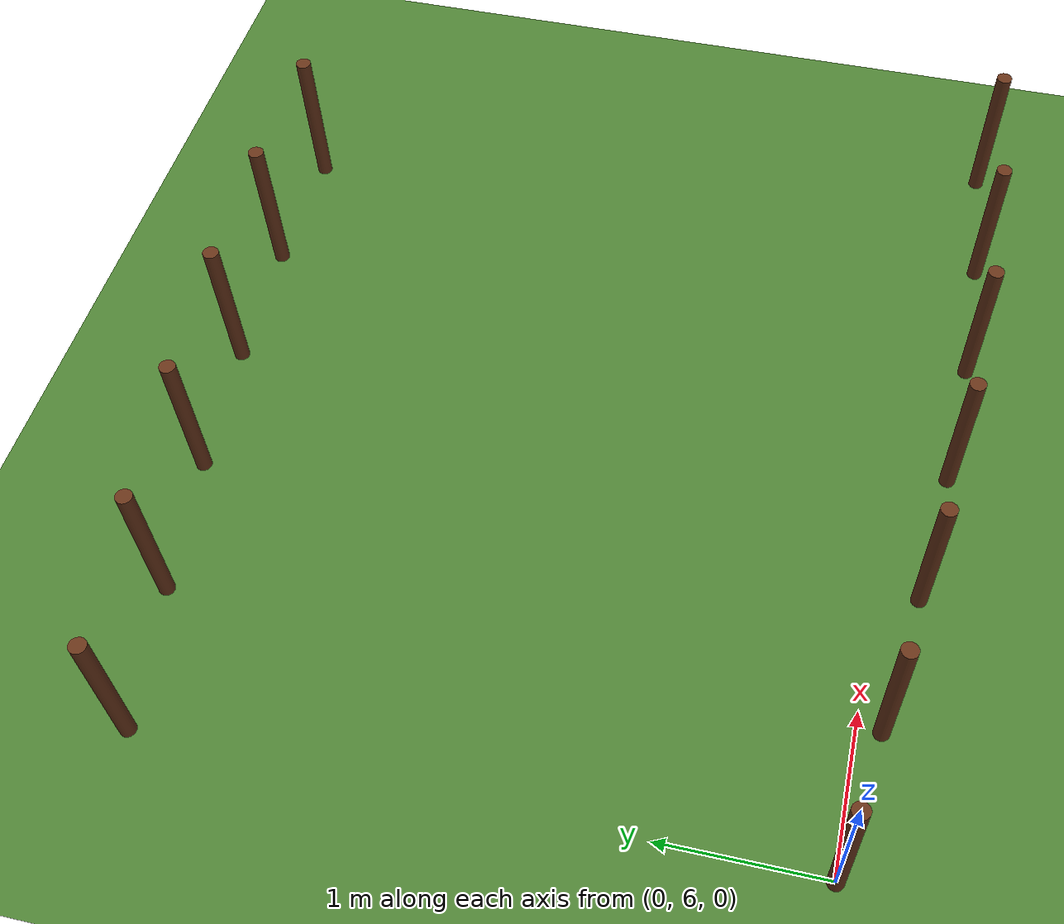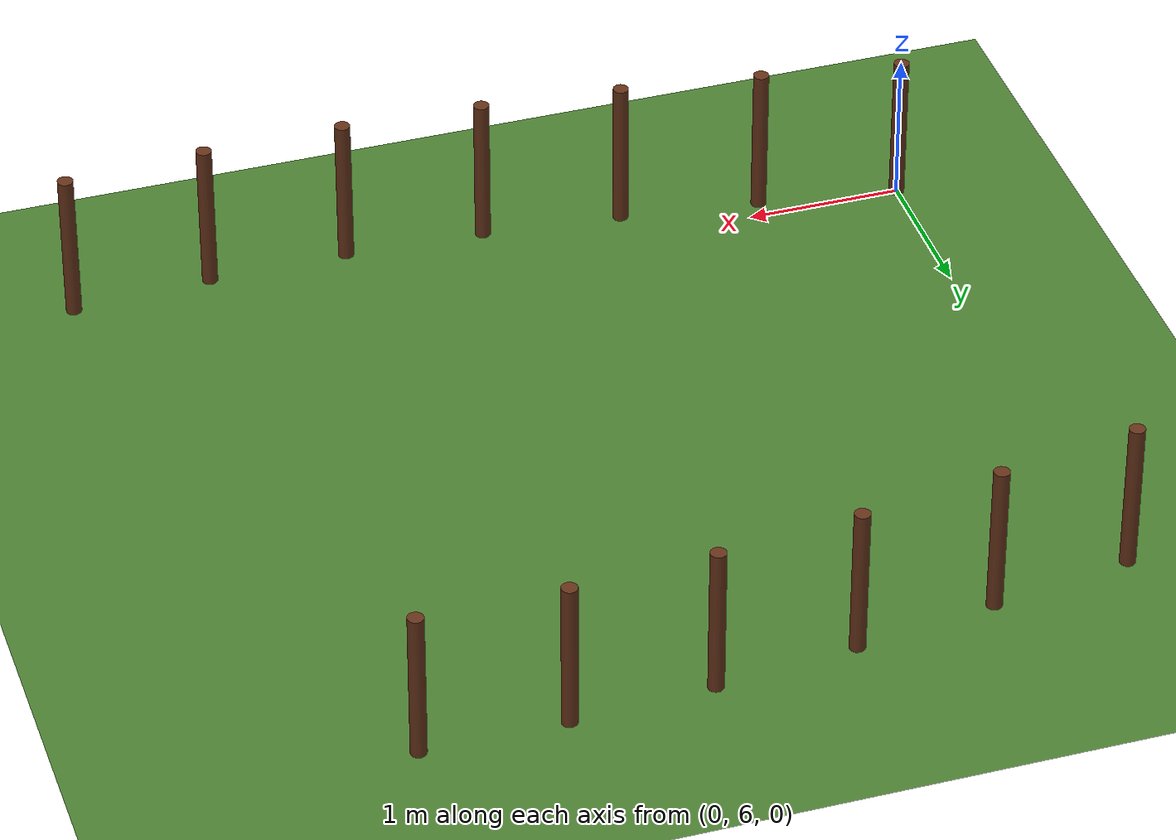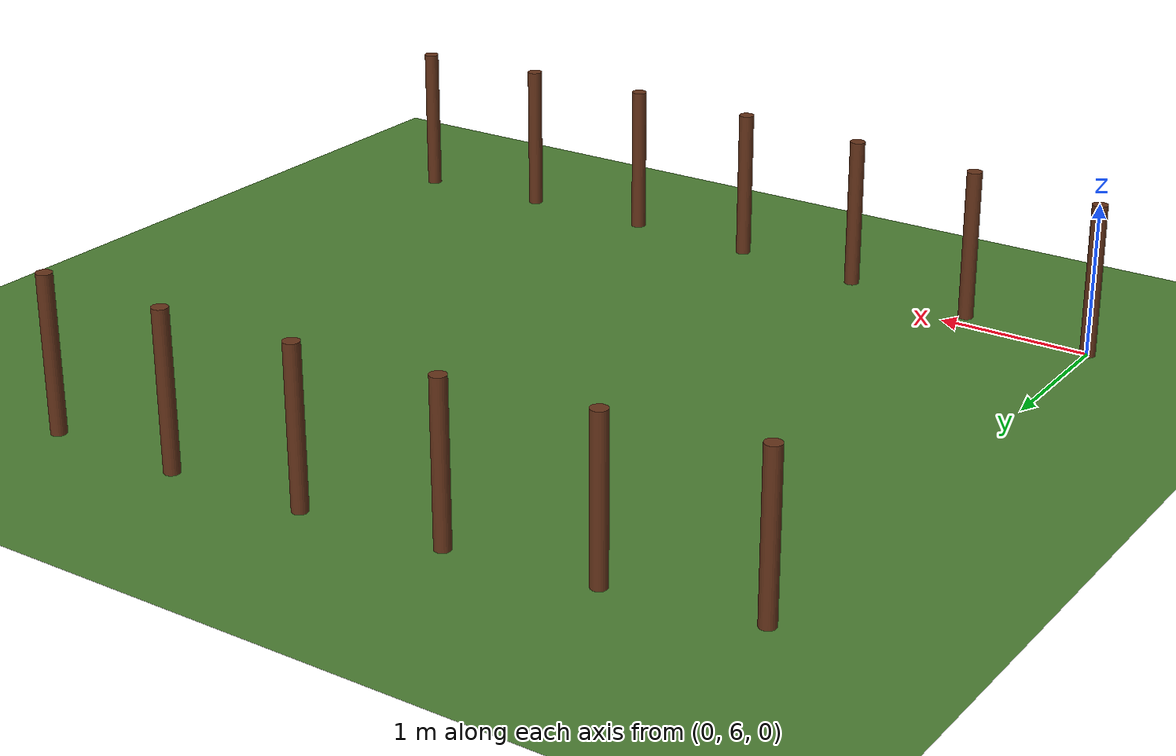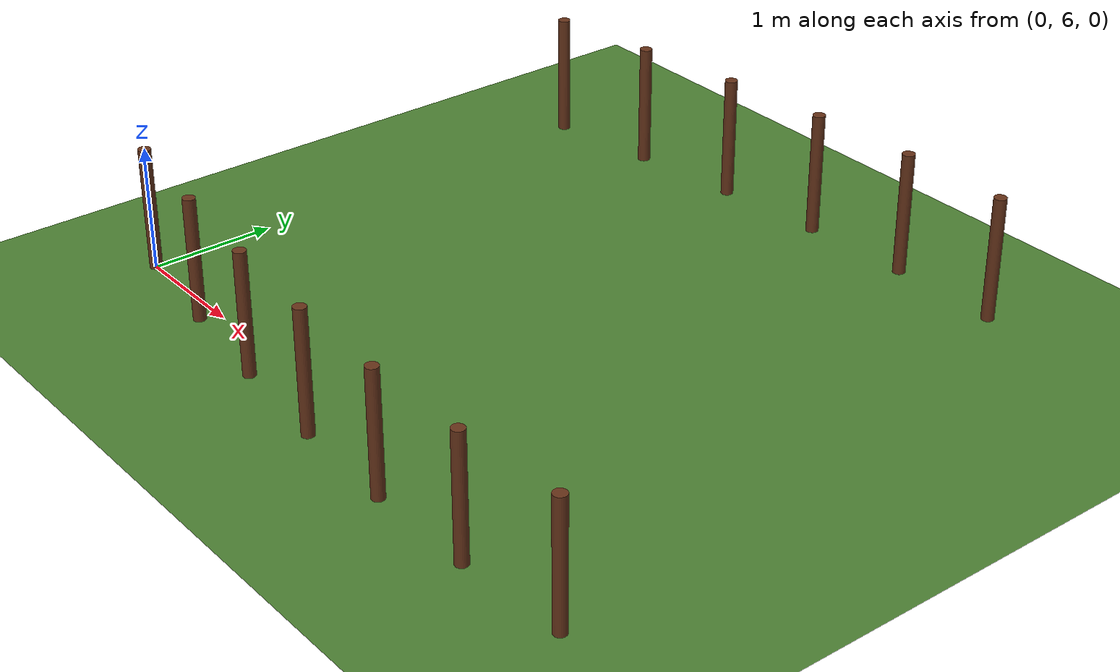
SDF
<sdf version="1.6">
 <world name="vineyard_variable">
  <model name="ground_plane">
   <static>true</static>
   <link name="link">
    <collision name="collision">
     <geometry><plane><normal>0 0 1</normal><size>100 100</size></plane></geometry>
     <surface><friction><ode><mu>100</mu><mu2>50</mu2></ode></friction></surface>
    </collision>
    <visual name="visual">
     <cast_shadows>false</cast_shadows>
     <geometry><plane><normal>0 0 1</normal><size>100 100</size></plane></geometry>
     <material><ambient>0.3 0.5 0.2 1</ambient><diffuse>0.3 0.5 0.2 1</diffuse></material>
    </visual>
   </link>
  </model>
  <model name="vine_52">
   <static>true</static>
   <pose>0.0 6.0 0.5 0 0 0</pose>
   <link name="link">
    <collision name="collision">
     <geometry><cylinder><radius>0.05</radius><length>1.0</length></cylinder></geometry>
    </collision>
    <visual name="visual">
     <geometry><cylinder><radius>0.05</radius><length>1.0</length></cylinder></geometry>
     <material><ambient>0.4 0.2 0.1 1</ambient><diffuse>0.4 0.2 0.1 1</diffuse></material>
    </visual>
   </link>
  </model>
  <model name="vine_53">
   <static>true</static>
   <pose>0.9 5.859090306689964 0.5 0 0 0</pose>
   <link name="link">
    <collision name="collision">
     <geometry><cylinder><radius>0.05</radius><length>1.0</length></cylinder></geometry>
    </collision>
    <visual name="visual">
     <geometry><cylinder><radius>0.05</radius><length>1.0</length></cylinder></geometry>
     <material><ambient>0.4 0.2 0.1 1</ambient><diffuse>0.4 0.2 0.1 1</diffuse></material>
    </visual>
   </link>
  </model>
  <model name="vine_54">
   <static>true</static>
   <pose>1.8 5.736246131211411 0.5 0 0 0</pose>
   <link name="link">
    <collision name="collision">
     <geometry><cylinder><radius>0.05</radius><length>1.0</length></cylinder></geometry>
    </collision>
    <visual name="visual">
     <geometry><cylinder><radius>0.05</radius><length>1.0</length></cylinder></geometry>
     <material><ambient>0.4 0.2 0.1 1</ambient><diffuse>0.4 0.2 0.1 1</diffuse></material>
    </visual>
   </link>
  </model>
  <model name="vine_55">
   <static>true</static>
   <pose>2.7 5.647216877246021 0.5 0 0 0</pose>
   <link name="link">
    <collision name="collision">
     <geometry><cylinder><radius>0.05</radius><length>1.0</length></cylinder></geometry>
    </collision>
    <visual name="visual">
     <geometry><cylinder><radius>0.05</radius><length>1.0</length></cylinder></geometry>
     <material><ambient>0.4 0.2 0.1 1</ambient><diffuse>0.4 0.2 0.1 1</diffuse></material>
    </visual>
   </link>
  </model>
  <model name="vine_56">
   <static>true</static>
   <pose>3.6 5.603416660723325 0.5 0 0 0</pose>
   <link name="link">
    <collision name="collision">
     <geometry><cylinder><radius>0.05</radius><length>1.0</length></cylinder></geometry>
    </collision>
    <visual name="visual">
     <geometry><cylinder><radius>0.05</radius><length>1.0</length></cylinder></geometry>
     <material><ambient>0.4 0.2 0.1 1</ambient><diffuse>0.4 0.2 0.1 1</diffuse></material>
    </visual>
   </link>
  </model>
  <model name="vine_57">
   <static>true</static>
   <pose>4.5 5.610460947648722 0.5 0 0 0</pose>
   <link name="link">
    <collision name="collision">
     <geometry><cylinder><radius>0.05</radius><length>1.0</length></cylinder></geometry>
    </collision>
    <visual name="visual">
     <geometry><cylinder><radius>0.05</radius><length>1.0</length></cylinder></geometry>
     <material><ambient>0.4 0.2 0.1 1</ambient><diffuse>0.4 0.2 0.1 1</diffuse></material>
    </visual>
   </link>
  </model>
  <model name="vine_58">
   <static>true</static>
   <pose>5.4 5.667446615688527 0.5 0 0 0</pose>
   <link name="link">
    <collision name="collision">
     <geometry><cylinder><radius>0.05</radius><length>1.0</length></cylinder></geometry>
    </collision>
    <visual name="visual">
     <geometry><cylinder><radius>0.05</radius><length>1.0</length></cylinder></geometry>
     <material><ambient>0.4 0.2 0.1 1</ambient><diffuse>0.4 0.2 0.1 1</diffuse></material>
    </visual>
   </link>
  </model>
  <model name="vine_78">
   <static>true</static>
   <pose>0.0 10.0 0.5 0 0 0</pose>
   <link name="link">
    <collision name="collision">
     <geometry><cylinder><radius>0.05</radius><length>1.0</length></cylinder></geometry>
    </collision>
    <visual name="visual">
     <geometry><cylinder><radius>0.05</radius><length>1.0</length></cylinder></geometry>
     <material><ambient>0.4 0.2 0.1 1</ambient><diffuse>0.4 0.2 0.1 1</diffuse></material>
    </visual>
   </link>
  </model>
  <model name="vine_79">
   <static>true</static>
   <pose>0.9 10.140909693310036 0.5 0 0 0</pose>
   <link name="link">
    <collision name="collision">
     <geometry><cylinder><radius>0.05</radius><length>1.0</length></cylinder></geometry>
    </collision>
    <visual name="visual">
     <geometry><cylinder><radius>0.05</radius><length>1.0</length></cylinder></geometry>
     <material><ambient>0.4 0.2 0.1 1</ambient><diffuse>0.4 0.2 0.1 1</diffuse></material>
    </visual>
   </link>
  </model>
  <model name="vine_80">
   <static>true</static>
   <pose>1.8 10.263753868788589 0.5 0 0 0</pose>
   <link name="link">
    <collision name="collision">
     <geometry><cylinder><radius>0.05</radius><length>1.0</length></cylinder></geometry>
    </collision>
    <visual name="visual">
     <geometry><cylinder><radius>0.05</radius><length>1.0</length></cylinder></geometry>
     <material><ambient>0.4 0.2 0.1 1</ambient><diffuse>0.4 0.2 0.1 1</diffuse></material>
    </visual>
   </link>
  </model>
  <model name="vine_81">
   <static>true</static>
   <pose>2.7 10.35278312275398 0.5 0 0 0</pose>
   <link name="link">
    <collision name="collision">
     <geometry><cylinder><radius>0.05</radius><length>1.0</length></cylinder></geometry>
    </collision>
    <visual name="visual">
     <geometry><cylinder><radius>0.05</radius><length>1.0</length></cylinder></geometry>
     <material><ambient>0.4 0.2 0.1 1</ambient><diffuse>0.4 0.2 0.1 1</diffuse></material>
    </visual>
   </link>
  </model>
  <model name="vine_82">
   <static>true</static>
   <pose>3.6 10.396583339276674 0.5 0 0 0</pose>
   <link name="link">
    <collision name="collision">
     <geometry><cylinder><radius>0.05</radius><length>1.0</length></cylinder></geometry>
    </collision>
    <visual name="visual">
     <geometry><cylinder><radius>0.05</radius><length>1.0</length></cylinder></geometry>
     <material><ambient>0.4 0.2 0.1 1</ambient><diffuse>0.4 0.2 0.1 1</diffuse></material>
    </visual>
   </link>
  </model>
  <model name="vine_83">
   <static>true</static>
   <pose>4.5 10.389539052351278 0.5 0 0 0</pose>
   <link name="link">
    <collision name="collision">
     <geometry><cylinder><radius>0.05</radius><length>1.0</length></cylinder></geometry>
    </collision>
    <visual name="visual">
     <geometry><cylinder><radius>0.05</radius><length>1.0</length></cylinder></geometry>
     <material><ambient>0.4 0.2 0.1 1</ambient><diffuse>0.4 0.2 0.1 1</diffuse></material>
    </visual>
   </link>
  </model>
 </world>
</sdf>
